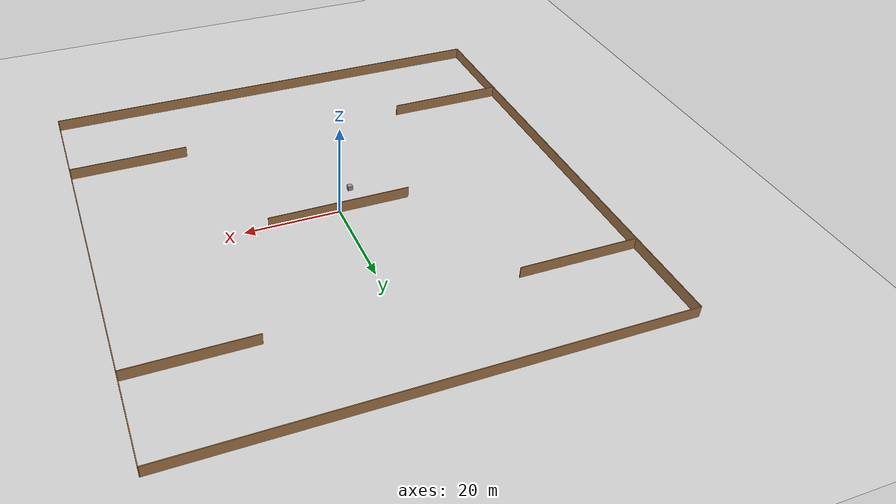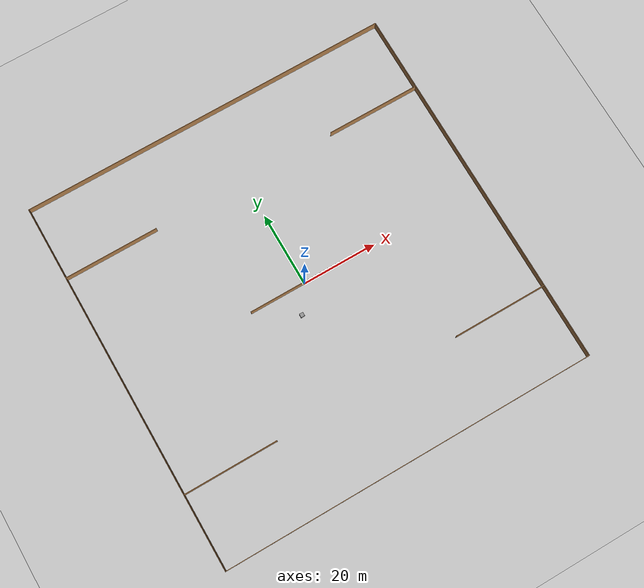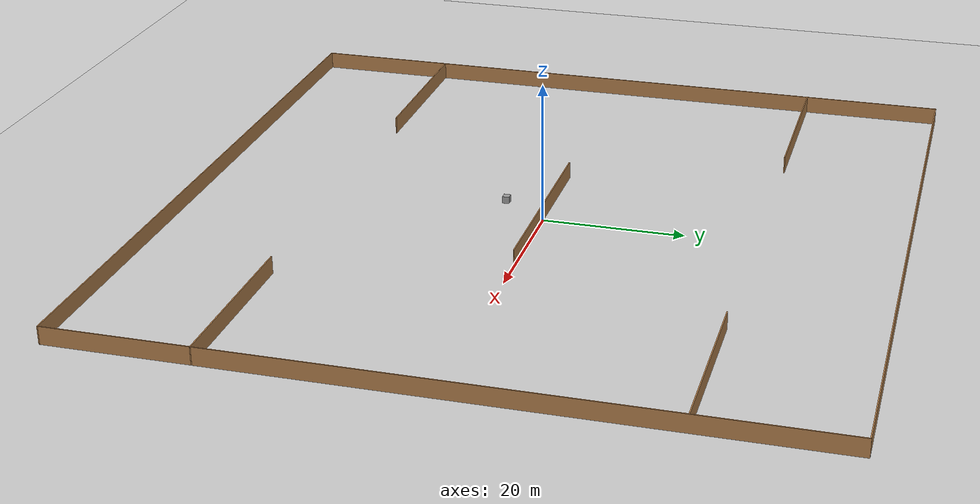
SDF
<sdf version="1.7">
 <world name="default">
  <light name="sun" type="directional">
   <pose>0 0 10 0 -0 0</pose>
   <diffuse>0.8 0.8 0.8 1</diffuse>
   <specular>0.2 0.2 0.2 1</specular>
   <attenuation>
    <range>1000</range>
    <constant>0.9</constant>
    <linear>0.01</linear>
    <quadratic>0.001</quadratic>
   </attenuation>
   <direction>-0.5 0.1 -0.9</direction>
   <spot><inner_angle>0</inner_angle><outer_angle>0</outer_angle><falloff>0</falloff></spot>
  </light>
  <model name="ground_plane">
   <static>1</static>
   <link name="link">
    <collision name="collision">
     <geometry><plane><normal>0 0 1</normal><size>100 100</size></plane></geometry>
     <surface>
      <contact><collide_bitmask>65535</collide_bitmask></contact>
      <friction><ode><mu>100</mu><mu2>50</mu2></ode></friction>
     </surface>
    </collision>
    <visual name="visual">
     <cast_shadows>0</cast_shadows>
     <geometry><plane><normal>0 0 1</normal><size>100 100</size></plane></geometry>
     <material>
      <script><uri>file://media/materials/scripts/gazebo.material</uri><name>Gazebo/Grey</name></script>
     </material>
    </visual>
   </link>
  </model>
  <gravity>0 0 -9.8</gravity>
  <magnetic_field>6e-06 2.3e-05 -4.2e-05</magnetic_field>
  <atmosphere type="adiabatic"/>
  <physics type="ode">
   <max_step_size>0.001</max_step_size>
   <real_time_factor>1</real_time_factor>
   <real_time_update_rate>1000</real_time_update_rate>
  </physics>
  <scene><ambient>0.4 0.4 0.4 1</ambient><background>0.7 0.7 0.7 1</background><shadows>1</shadows></scene>
  <spherical_coordinates>
   <surface_model>EARTH_WGS84</surface_model>
   <latitude_deg>0</latitude_deg>
   <longitude_deg>0</longitude_deg>
   <elevation>0</elevation>
   <heading_deg>0</heading_deg>
  </spherical_coordinates>
  <model name="base_sim_world">
   <link name="Wall_0">
    <collision name="Wall_0_Collision">
     <geometry><box><size>100.15 0.15 2.5</size></box></geometry>
     <pose>0 0 1.25 0 -0 0</pose>
    </collision>
    <visual name="Wall_0_Visual">
     <pose>0 0 1.25 0 -0 0</pose>
     <geometry><box><size>100.15 0.15 2.5</size></box></geometry>
     <material>
      <script><uri>file://media/materials/scripts/gazebo.material</uri><name>Gazebo/Wood</name></script>
      <ambient>1 1 1 1</ambient>
     </material>
     <meta><layer>0</layer></meta>
    </visual>
    <pose>0 -50 0 0 -0 0</pose>
   </link>
   <link name="Wall_10">
    <collision name="Wall_10_Collision">
     <geometry><box><size>25.15 0.15 2.5</size></box></geometry>
     <pose>0 0 1.25 0 -0 0</pose>
    </collision>
    <visual name="Wall_10_Visual">
     <pose>0 0 1.25 0 -0 0</pose>
     <geometry><box><size>25.15 0.15 2.5</size></box></geometry>
     <material>
      <script><uri>file://media/materials/scripts/gazebo.material</uri><name>Gazebo/Wood</name></script>
      <ambient>1 1 1 1</ambient>
     </material>
     <meta><layer>0</layer></meta>
    </visual>
    <pose>37.5 30 0 0 -0 0</pose>
   </link>
   <link name="Wall_12">
    <collision name="Wall_12_Collision">
     <geometry><box><size>25.15 0.15 2.5</size></box></geometry>
     <pose>0 0 1.25 0 -0 0</pose>
    </collision>
    <visual name="Wall_12_Visual">
     <pose>0 0 1.25 0 -0 0</pose>
     <geometry><box><size>25.15 0.15 2.5</size></box></geometry>
     <material>
      <script><uri>file://media/materials/scripts/gazebo.material</uri><name>Gazebo/Wood</name></script>
      <ambient>1 1 1 1</ambient>
     </material>
     <meta><layer>0</layer></meta>
    </visual>
    <pose>-37.5 -30 0 0 -0 0</pose>
   </link>
   <link name="Wall_14">
    <collision name="Wall_14_Collision">
     <geometry><box><size>25.15 0.15 2.5</size></box></geometry>
     <pose>0 0 1.25 0 -0 0</pose>
    </collision>
    <visual name="Wall_14_Visual">
     <pose>0 0 1.25 0 -0 0</pose>
     <geometry><box><size>25.15 0.15 2.5</size></box></geometry>
     <material>
      <script><uri>file://media/materials/scripts/gazebo.material</uri><name>Gazebo/Wood</name></script>
      <ambient>1 1 1 1</ambient>
     </material>
     <meta><layer>0</layer></meta>
    </visual>
    <pose>37.5 -30 0 0 -0 0</pose>
   </link>
   <link name="Wall_16">
    <collision name="Wall_16_Collision">
     <geometry><box><size>30.15 0.15 2.5</size></box></geometry>
     <pose>0 0 1.25 0 -0 0</pose>
    </collision>
    <visual name="Wall_16_Visual">
     <pose>0 0 1.25 0 -0 0</pose>
     <geometry><box><size>30.15 0.15 2.5</size></box></geometry>
     <material>
      <script><uri>file://media/materials/scripts/gazebo.material</uri><name>Gazebo/Wood</name></script>
      <ambient>1 1 1 1</ambient>
     </material>
     <meta><layer>0</layer></meta>
    </visual>
    <pose>0 0 0 0 -0 3.14159</pose>
   </link>
   <link name="Wall_2">
    <collision name="Wall_2_Collision">
     <geometry><box><size>100.15 0.15 2.5</size></box></geometry>
     <pose>0 0 1.25 0 -0 0</pose>
    </collision>
    <visual name="Wall_2_Visual">
     <pose>0 0 1.25 0 -0 0</pose>
     <geometry><box><size>100.15 0.15 2.5</size></box></geometry>
     <material>
      <script><uri>file://media/materials/scripts/gazebo.material</uri><name>Gazebo/Wood</name></script>
      <ambient>1 1 1 1</ambient>
     </material>
     <meta><layer>0</layer></meta>
    </visual>
    <pose>0 50 0 0 -0 3.14159</pose>
   </link>
   <link name="Wall_4">
    <collision name="Wall_4_Collision">
     <geometry><box><size>100.15 0.15 2.5</size></box></geometry>
     <pose>0 0 1.25 0 -0 0</pose>
    </collision>
    <visual name="Wall_4_Visual">
     <pose>0 0 1.25 0 -0 0</pose>
     <geometry><box><size>100.15 0.15 2.5</size></box></geometry>
     <material>
      <script><uri>file://media/materials/scripts/gazebo.material</uri><name>Gazebo/Wood</name></script>
      <ambient>1 1 1 1</ambient>
     </material>
     <meta><layer>0</layer></meta>
    </visual>
    <pose>50 0 0 0 -0 -1.5708</pose>
   </link>
   <link name="Wall_6">
    <collision name="Wall_6_Collision">
     <geometry><box><size>100.15 0.15 2.5</size></box></geometry>
     <pose>0 0 1.25 0 -0 0</pose>
    </collision>
    <visual name="Wall_6_Visual">
     <pose>0 0 1.25 0 -0 0</pose>
     <geometry><box><size>100.15 0.15 2.5</size></box></geometry>
     <material>
      <script><uri>file://media/materials/scripts/gazebo.material</uri><name>Gazebo/Wood</name></script>
      <ambient>1 1 1 1</ambient>
     </material>
     <meta><layer>0</layer></meta>
    </visual>
    <pose>-50 0 0 0 -0 1.5708</pose>
   </link>
   <link name="Wall_8">
    <collision name="Wall_8_Collision">
     <geometry><box><size>25.15 0.15 2.5</size></box></geometry>
     <pose>0 0 1.25 0 -0 0</pose>
    </collision>
    <visual name="Wall_8_Visual">
     <pose>0 0 1.25 0 -0 0</pose>
     <geometry><box><size>25.15 0.15 2.5</size></box></geometry>
     <material>
      <script><uri>file://media/materials/scripts/gazebo.material</uri><name>Gazebo/Wood</name></script>
      <ambient>1 1 1 1</ambient>
     </material>
     <meta><layer>0</layer></meta>
    </visual>
    <pose>-37.5 30 0 0 -0 0</pose>
   </link>
   <static>1</static>
  </model>
  <model name="unit_box">
   <pose>-4.58398 -6.54566 0.5 0 -0 0</pose>
   <link name="link">
    <inertial>
     <mass>1</mass>
     <inertia>
      <ixx>0.166667</ixx>
      <ixy>0</ixy>
      <ixz>0</ixz>
      <iyy>0.166667</iyy>
      <iyz>0</iyz>
      <izz>0.166667</izz>
     </inertia>
    </inertial>
    <collision name="collision"><geometry><box><size>1 1 1</size></box></geometry></collision>
    <visual name="visual">
     <geometry><box><size>1 1 1</size></box></geometry>
     <material>
      <script><name>Gazebo/Grey</name><uri>file://media/materials/scripts/gazebo.material</uri></script>
     </material>
    </visual>
   </link>
  </model>
 </world>
</sdf>
